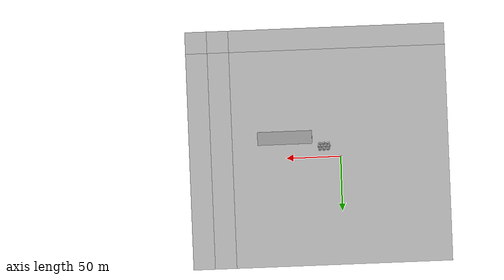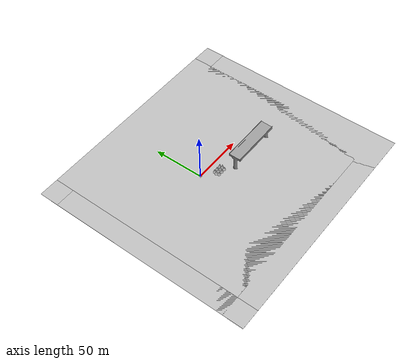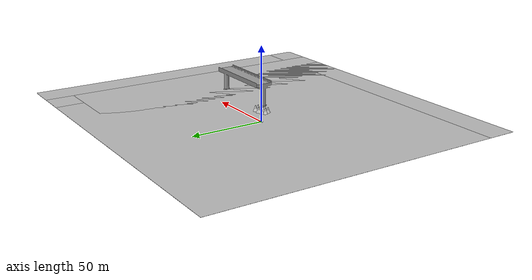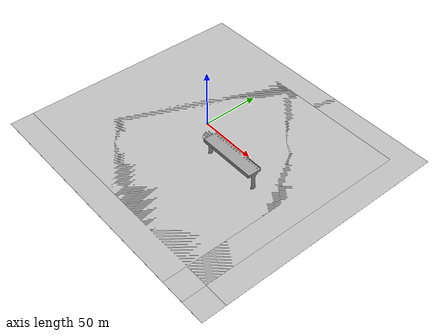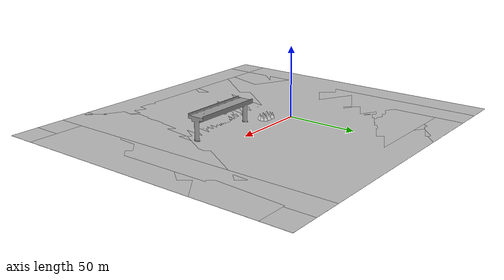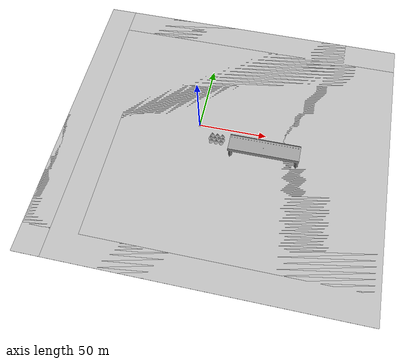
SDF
<sdf version="1.5">
 <world name="default">
  <include><uri>model://sun</uri></include>
  <include>
   <name>drone_racing_point_start</name>
   <uri>model://drone_racing_point_start</uri>
   <pose>0 0 0 0 0 -1.57</pose>
  </include>
  <include>
   <name>deungsun_bridge</name>
   <uri>model://deungsun_bridge</uri>
   <pose>25.0 5.0 0 1.570796 0 0</pose>
  </include>
  <include><name>asphalt1</name><uri>model://concrete_plane</uri></include>
  <include><name>asphalt2</name><uri>model://concrete_plane</uri><pose>20 0 0 0 0 0</pose></include>
  <include><name>asphalt3</name><uri>model://concrete_plane</uri><pose>0 -20 0 0 0 0</pose></include>
  <include><name>asphalt4</name><uri>model://concrete_plane</uri><pose>20 -20 0 0 0 0</pose></include>
  <include><name>asphalt5</name><uri>model://concrete_plane</uri><pose>40 0 0 0 0 0</pose></include>
  <include><name>asphalt6</name><uri>model://concrete_plane</uri><pose>40 -20 0 0 0 0</pose></include>
  <include><name>tree1</name><uri>model://pine_tree</uri><pose>11.25 -7.5 0 0 0 0</pose></include>
  <include><name>tree2</name><uri>model://pine_tree</uri><pose>15 -7.5 0 0 0 0</pose></include>
  <include><name>tree3</name><uri>model://pine_tree</uri><pose>18.75 -7.5 0 0 0 0</pose></include>
  <include><name>tree4</name><uri>model://pine_tree</uri><pose>10.5 -10 0 0 0 0</pose></include>
  <include><name>tree5</name><uri>model://pine_tree</uri><pose>13.5 -10 0 0 0 0</pose></include>
  <include><name>tree6</name><uri>model://pine_tree</uri><pose>16.5 -10 0 0 0 0</pose></include>
  <include><name>tree7</name><uri>model://pine_tree</uri><pose>19.5 -10 0 0 0 0</pose></include>
  <include><name>tree8</name><uri>model://pine_tree</uri><pose>11.25 -12.5 0 0 0 0</pose></include>
  <include><name>tree9</name><uri>model://pine_tree</uri><pose>15 -12.5 0 0 0 0</pose></include>
  <include><name>tree10</name><uri>model://pine_tree</uri><pose>18.75 -12.5 0 0 0 0</pose></include>
  <physics name="default_physics" default="0" type="ode">
   <gravity>0 0 -9.8066</gravity>
   <ode>
    <solver>
     <type>quick</type>
     <iters>10</iters>
     <sor>1.3</sor>
     <use_dynamic_moi_rescaling>0</use_dynamic_moi_rescaling>
    </solver>
    <constraints>
     <cfm>0</cfm>
     <erp>0.2</erp>
     <contact_max_correcting_vel>100</contact_max_correcting_vel>
     <contact_surface_layer>0.001</contact_surface_layer>
    </constraints>
   </ode>
   <max_step_size>0.002</max_step_size>
   <real_time_factor>1</real_time_factor>
   <real_time_update_rate>500</real_time_update_rate>
   <magnetic_field>6.0e-6 2.3e-5 -4.2e-5</magnetic_field>
  </physics>
 </world>
</sdf>

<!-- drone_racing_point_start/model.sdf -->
<sdf version='1.4'>
<model name='drone_racing_point_start'>

<static>true</static>
<link name="link">

  <collision name="collision">
    <geometry>
      <box>
        <size>2 2 .2</size>
      </box>
    </geometry>
  </collision>

  <visual name="visual">
    <cast_shadows>false</cast_shadows>
    <geometry>
      <box>
        <size>2 2 .2</size>
      </box>
    </geometry>
    <material>
      <script>
        <uri>model://drone_racing_point_start/materials/scripts</uri>
        <uri>model://drone_racing_point_start/materials/textures</uri>
        <name>point/start</name>
      </script>
    </material>
  </visual>

</link>
</model>
</sdf>

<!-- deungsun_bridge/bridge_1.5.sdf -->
<sdf version='1.5'>
	<model name='deungsun_bridge'>

		<static>true</static>

		<link name='link'>
				<visual name='visual'>
				<geometry>
					<mesh>
						<uri>model://deungsun_bridge/meshes/deungsun_bridge_simple.dae</uri>
					</mesh>
				</geometry>
				<material>
					<script>
						<uri>model://deungsun_bridge/materials/scripts</uri>
						<uri>model://deungsun_bridge/materials/textures</uri>
						<name>vrc/concrete</name>
					</script>
				</material>
			</visual>
			<collision name='collision'>
				<geometry>
					<mesh>
						<uri>model://deungsun_bridge/meshes/deungsun_bridge_simple.dae</uri>
					</mesh>
				</geometry>
				<material>
					<script>
						<uri>model://deungsun_bridge/materials/scripts</uri>
						<uri>model://deungsun_bridge/materials/textures</uri>
						<name>vrc/concrete</name>
					</script>
				</material>
			</collision>
		</link>

	</model>
</sdf>

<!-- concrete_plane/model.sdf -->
<sdf version="1.5">
  <model name="concrete_plane">
    <static>true</static>
    <link name="link">
      <collision name="collision">
        <geometry>
          <box>
            <size>200 200 .1</size>
          </box>
        </geometry>
      </collision>
      <visual name="visual">
        <cast_shadows>false</cast_shadows>
        <geometry>
          <box>
            <size>200 200 .1</size>
          </box>
        </geometry>
        <material>
          <script>
            <uri>model://concrete_plane/materials/scripts</uri>
            <uri>model://concrete_plane/materials/textures</uri>
            <name>vrc/concrete</name>
          </script>
        </material>
      </visual>
    </link>
  </model>
</sdf>

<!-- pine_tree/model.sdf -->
<sdf version="1.6">
  <model name="pine_tree">
    <static>true</static>
    <link name="link">
      <collision name="collision">
        <geometry>
          <mesh>
            <uri>file://isr-testbed/pine_tree/meshes/pine_tree.dae</uri>
          </mesh>
        </geometry>
      </collision>
      <visual name="branch">
        <geometry>
          <mesh>
            <uri>file://isr-testbed/pine_tree/meshes/pine_tree.dae</uri>
            <submesh>
              <name>Branch</name>
            </submesh>
          </mesh>
        </geometry>
        <material>
          <script>
            <uri>file://isr-testbed/pine_tree/materials/scripts/</uri>
            <uri>file://isr-testbed/pine_tree/materials/textures/</uri>
            <name>PineTree/Branch</name>
          </script>
        </material>
      </visual>
      <visual name="bark">
        <geometry>
          <mesh>
            <uri>file://isr-testbed/pine_tree/meshes/pine_tree.dae</uri>
            <submesh>
              <name>Bark</name>
            </submesh>
          </mesh>
        </geometry>
        <material>
          <script>
            <uri>file://isr-testbed/pine_tree/materials/scripts/</uri>
            <uri>file://isr-testbed/pine_tree/materials/textures/</uri>
            <name>PineTree/Bark</name>
          </script>
        </material>
      </visual>
    </link>
  </model>
</sdf>
